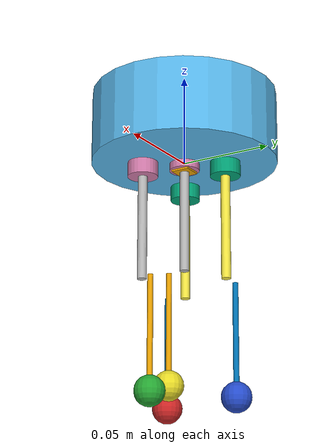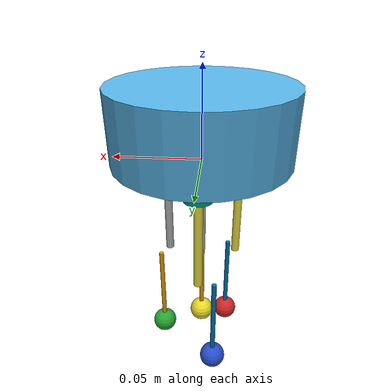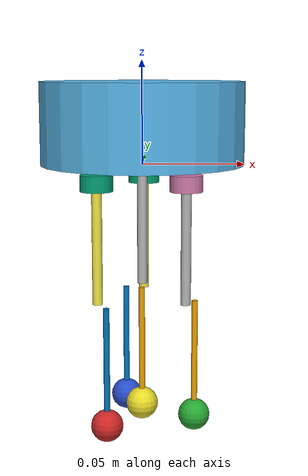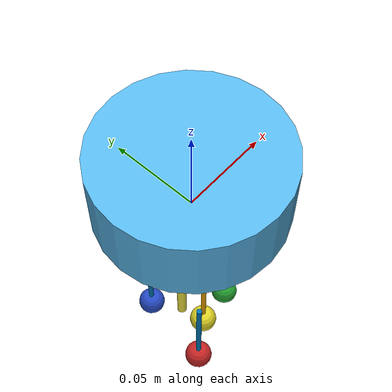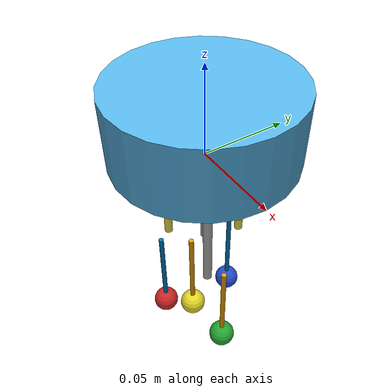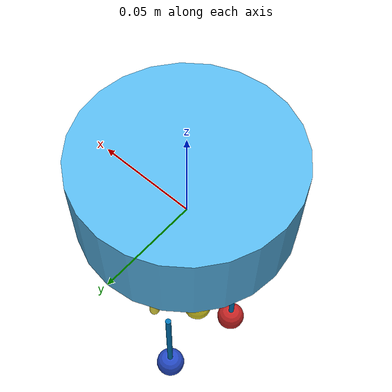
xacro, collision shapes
<?xml version="1.0"?>
<robot xmlns:xacro="http://www.ros.org/wiki/xacro" name="gurdy">

<!-- define peoperties -->

    <!-- For the material deformation (static) -->
    <xacro:property name="gazebo_kp" value="1000.0"/>
    <!-- For the material deformation (dynamic) -->
    <xacro:property name="gazebo_kd" value="1000.0"/>
    <!-- For the material friction (static) -->
    <xacro:property name="gazebo_mu1" value="10.0"/>
    <!-- For the material friction (dynamic) -->
    <xacro:property name="gazebo_mu2" value="10.0"/>

<!-- define materials -->

    <xacro:macro name="material_visual_red" params="">
        <material name="red">
            <color rgba="0.6 0.5 0 1"/>
        </material>
    </xacro:macro>

<!-- define inertia calculation -->

    <xacro:macro name="cylinder_inertia" params="mass r h">
        <inertia ixx="${(mass / 12.0) * (3*r*r + h*h)}" ixy="0" ixz="0"
                 iyy="${(mass / 12.0) * (3*r*r + h*h)}" iyz="0"
                 izz="${(mass*r*r) / 2.0}" />
    </xacro:macro>

    <xacro:macro name="box_inertia" params="mass x y z">
        <inertia ixx="${mass * (y*y + z*z) / 12.0}" ixy="0" ixz="0"
                 iyy="${mass * (x*x + z*z) / 12.0}" iyz="0"
                 izz="${mass * (x*x + y*y) / 12.0}" />
    </xacro:macro>

    <xacro:macro name="sphere_inertia" params="mass r">
        <inertia ixx="${(2 * mass * r * r / 5.0)}" ixy="0" ixz="0"
                 iyy="${(2 * mass * r * r / 5.0)}" iyz="0"
                 izz="${(2 * mass * r * r / 5.0)}" />
    </xacro:macro>

<!-- define base_link and head_link -->

    <xacro:macro name="gurdy_head" params="">

        <link name="base_link">
            <collision>
                <origin xyz="0 0 0" rpy="0 0 0"/>
                <geometry>
                    <box size="0.01 0.01 0.01"/>
                </geometry>
            </collision>
            <visual>
                <origin xyz="0 0 0.01" rpy="0 0 0"/>
                <geometry>
                    <box size="0.01 0.01 0.01"/>
                </geometry>
            </visual>
        </link>

        <link name="head_link">
            <inertial>
                <origin xyz="0 0 0.02" rpy="0 0 0"/>
                <mass value="0.01" />
                <inertia ixx="7.58333e-06" ixy="0" ixz="0" iyy="7.58333e-06" iyz="0" izz="1.25e-05"/>
            </inertial>
            <collision>
                <origin xyz="0 0 0.02" rpy="0 0 0"/>
                <geometry>
                    <cylinder radius="0.05" length="0.04"/>
                </geometry>
            </collision>
            <visual>
                <origin rpy="0.0 0 0" xyz="0 0 0"/>
                <geometry>
                    <mesh filename="package://my_gurdy_description/models/gurdy/meshes/gurdy_head_v2.dae"/>
                </geometry>
            </visual>
        </link>

        <gazebo reference="head_link">
            <mu1>${gazebo_mu1}</mu1>
            <mu2>${gazebo_mu2}</mu2>
        </gazebo>

        <joint name="base_joint" type="fixed">
            <parent link="base_link"/>
            <child link="head_link"/>
            <origin xyz="0 0 0" rpy="0 -0 0"/>
        </joint>

    </xacro:macro>

<!-- define upperleg_yaw_link -->

    <xacro:macro name="upperleg_yaw_link" params="number">

        <link name="upperleg_M${number}_yaw_link">
            <inertial>
                <origin xyz="0 0 0" rpy="0 0 0"/>
                <mass value="0.01"/>
                <xacro:cylinder_inertia mass="0.01" r="0.008" h="0.008"/>
            </inertial>
            <collision>
                <origin rpy="0.0 0 0" xyz="0 0 0"/>
                <geometry>
                    <cylinder radius="0.008" length="0.008"/>
                </geometry>
            </collision>
            <visual>
                <origin rpy="0.0 0 0" xyz="0 0 0"/>
                <geometry>
                    <cylinder radius="0.008" length="0.008"/>
                </geometry>
            </visual>
        </link>

    </xacro:macro>

<!-- definition of yaw joint is in definition of gurdy_leg -->

<!-- define transmission of yaw joint -->

    <xacro:macro name="trans_yaw" params="number">

        <transmission name="tran_M${number}_head_upper_yaw">

            <type>transmission_interface/SimpleTransmission</type>
            <joint name="head_upperlegM${number}_yaw_joint">
                <hardwareInterface>hardware_interface/EffortJointInterface</hardwareInterface>
            </joint>
            <actuator name="motor_M${number}_head_upper_yaw">
                <hardwareInterface>hardware_interface/EffortJointInterface</hardwareInterface>
                <mechanicalReduction>1</mechanicalReduction>
            </actuator>

        </transmission>

    </xacro:macro>

<!-- define upperleg_link -->

    <xacro:macro name="upperleg_link" params="number">

        <link name="upperleg_M${number}_link">

            <inertial>
                <origin xyz="0 0 0.03" rpy="0 0 0"/>
                <mass value="0.01"/>
                <inertia ixx="3.015625e-06" ixy="0" ixz="0" iyy="3.015625e-06" iyz="0" izz="3.125e-08"/>
            </inertial>

            <collision>
                <origin rpy="0.0 0 0" xyz="0 0 0.03"/>
                <geometry>
                    <cylinder length="0.06" radius="0.0025"/>
                </geometry>
            </collision>

            <visual>
                <origin rpy="0.0 0 0" xyz="0 0 0"/>
                <geometry>
                    <mesh filename="package://my_gurdy_description/models/gurdy/meshes/gurdy_higherleg_v2.dae"/>
                </geometry>
            </visual>

        </link>

    </xacro:macro>

<!-- definition of upperleg joint is in definition of gurdy_leg -->

<!-- define transmission of upperleg joint -->

    <xacro:macro name="trans_upperleg" params="number">

        <transmission name="tran_M${number}_head_upper">

            <type>transmission_interface/SimpleTransmission</type>
            <joint name="head_upperlegM${number}_joint">
                <hardwareInterface>hardware_interface/EffortJointInterface</hardwareInterface>
            </joint>
            <actuator name="motor_M${number}_head_upper">
                <hardwareInterface>hardware_interface/EffortJointInterface</hardwareInterface>
                <mechanicalReduction>1</mechanicalReduction>
            </actuator>

        </transmission>

    </xacro:macro>

<!-- define lowerleg link -->

    <xacro:macro name="lowerleg_link" params="number">

        <link name="lowerleg_M${number}_link">

            <inertial>
                <origin xyz="0 0 0.03" rpy="0 0 0"/>
                <mass value="0.01"/>
                <xacro:cylinder_inertia mass="0.01" r="0.0015" h="0.06"/>
            </inertial>

            <collision>
                <origin rpy="0 0 0" xyz="0 0 0.03"/>
                <geometry>
                    <cylinder length="0.06" radius="0.0015"/>
                </geometry>
            </collision>

            <visual>
                <origin rpy="0 0 0" xyz="0 0 0"/>
                <geometry>
                    <mesh filename="package://my_gurdy_description/models/gurdy/meshes/gurdy_lowerleg_v2.dae"/>
                </geometry>
            </visual>

        </link>

    </xacro:macro>

<!-- define lowerleg joint -->

    <xacro:macro name="lowerleg_joint" params="number">

        <joint name="upperleg_lowerleg_M${number}_joint" type="revolute">

            <parent link="upperleg_M${number}_link"/>
            <child link="lowerleg_M${number}_link"/>
            <origin xyz="0 0.0095 0.06" rpy="0 0 3.14159"/>
            <limit lower="-2.9" upper="1.57" effort="1.0" velocity="0.005"/>
            <axis xyz="0 1 0"/>

        </joint>

        <transmission name="tran_M${number}_upper_lower">

            <type>transmission_interface/SimpleTransmission</type>
            <joint name="upperleg_lowerleg_M${number}_joint">
                <hardwareInterface>hardware_interface/EffortJointInterface</hardwareInterface>
            </joint>
            <actuator name="motor_M${number}_upper_lower">
                <hardwareInterface>hardware_interface/EffortJointInterface</hardwareInterface>
                <mechanicalReduction>1</mechanicalReduction>
            </actuator>

        </transmission>

    </xacro:macro>

<!-- define foot link -->

    <xacro:macro name="foot_link" params="number color">

        <link name="foot_M${number}_link">

            <inertial>
                <origin xyz="0 0 0" rpy="0 0 0"/>
                <mass value="0.01"/>
                <xacro:sphere_inertia mass="0.01" r="0.008"/>
            </inertial>

            <collision>
                <origin rpy="0 0 0" xyz="0 0 0"/>
                <geometry>
                    <sphere radius="0.008"/>
                </geometry>
            </collision>

            <visual>
                <origin rpy="0 0 0" xyz="0 0 0"/>
                <geometry>
                    <sphere radius="0.008"/>
                </geometry>
            </visual>

        </link>

        <gazebo reference="foot_M${number}_link">

            <kp>${gazebo_kp}</kp>
            <kd>${gazebo_kd}</kd>
            <mu1>${gazebo_mu1}</mu1>
            <mu2>${gazebo_mu2}</mu2>
            <material>Gazebo/${color}</material>

        </gazebo>

        <joint name="foot_lowerleg_M${number}_joint" type="fixed">

            <parent link="lowerleg_M${number}_link"/>
            <child link="foot_M${number}_link"/>
            <origin xyz="0 0 0.06" rpy="0 0 0"/>

        </joint>

    </xacro:macro>

<!-- define gurdy_leg -->

    <xacro:macro name="gurdy_leg" params="head_link_name Number Color *origin">
    <!-- *upperleg_joint_origin -->

        <!-- apply yaw link -->
        <xacro:upperleg_yaw_link number="${Number}"/>

        <!-- define yaw joint -->
        <joint name="head_upperlegM${Number}_yaw_joint" type="revolute">
            <parent link="${head_link_name}"/>
            <child link="upperleg_M${Number}_yaw_link"/>
            <!-- origins of yaw joints are different, so here to individually define, as an insert_block -->
            <xacro:insert_block name="origin"/>
            <limit lower="-0.7" upper="0.7" effort="1.0" velocity="0.005"/>
            <axis xyz="0 0 1"/>
        </joint>

        <!-- apply transmission of yaw joint -->
        <xacro:trans_yaw number="${Number}"/>

        <!-- apply upperleg link -->
        <xacro:upperleg_link number="${Number}"/>

        <!-- define upperleg joint -->
        <joint name="head_upperlegM${Number}_joint" type="revolute">
            <parent link="upperleg_M${Number}_yaw_link"/>
            <child link="upperleg_M${Number}_link"/>
            <origin xyz="0 0 0" rpy="3.14159 0 0"/>
            <limit lower="-1.55" upper="0" effort="1.0" velocity="0.005"/>
            <axis xyz="0 1 0"/>
        </joint>

        <!-- apply transmission of upperleg joint -->
        <xacro:trans_upperleg number="${Number}"/>

        <!-- apply lowerleg link -->
        <xacro:lowerleg_link number="${Number}"/>

        <!-- apply lowerleg joint -->
        <xacro:lowerleg_joint number="${Number}"/>

        <!-- apply foot link -->
        <xacro:foot_link number="${Number}" color="${Color}"/>

    </xacro:macro>

<!-- define control system -->

    <xacro:macro name="control_system" params="namespace">

        <gazebo>
            <plugin name="gazebo_ros_control" filename="libgazebo_ros_control.so">
                <robotNamespace>/${namespace}</robotNamespace>
            </plugin>
        </gazebo>

        <gazebo>

            <plugin name="gazebo_ros_imu_controller" filename="libgazebo_ros_imu.so">
            <robotNamespace>/${namespace}</robotNamespace>
            <topicName>imu/data</topicName>
            <serviceName>imu/service</serviceName>
            <bodyName>base_link</bodyName>
            <gaussianNoise>0</gaussianNoise>
            <rpyOffsets>0 0 0</rpyOffsets>
            <updateRate>5.0</updateRate>
            <alwaysOn>true</alwaysOn>
            <gaussianNoise>0</gaussianNoise>
            </plugin>

        </gazebo>

    </xacro:macro>

<!-- apply to integrity -->

<!-- apply base_link and head_link -->

    <xacro:gurdy_head />

<!-- apply gurdy_leg -->

<!-- 1st leg: with yaw link&joint, upperleg link&joint, lowerleg link&joint -->

    <xacro:gurdy_leg head_link_name="head_link" Number="1" Color="Red">
        <origin xyz="-0.02165 -0.0125 -0.008" rpy="0 0 0.523599"/>
    </xacro:gurdy_leg>

<!-- 2nd leg: with yaw link&joint, upperleg link&joint, lowerleg link&joint -->

    <xacro:gurdy_leg head_link_name="head_link" Number="2" Color="Green">
        <origin xyz="0.02165 -0.0125 -0.008" rpy="0 0 2.61799"/>
    </xacro:gurdy_leg>

<!-- 3rd leg: with yaw link&joint, upperleg link&joint, lowerleg link&joint -->

    <xacro:gurdy_leg head_link_name="head_link" Number="3" Color="Blue">
        <origin xyz="0 0.025 -0.008" rpy="0 0 -1.57"/>
    </xacro:gurdy_leg>

<!-- 4th leg: with yaw link&joint, upperleg link&joint, lowerleg link&joint -->

    <xacro:gurdy_leg head_link_name="head_link" Number="4" Color="Yellow">
        <origin xyz="0 0 0" rpy="0 0 0"/>
    </xacro:gurdy_leg>

<!-- apply control system -->

    <xacro:control_system namespace="gurdy"/>

</robot>
